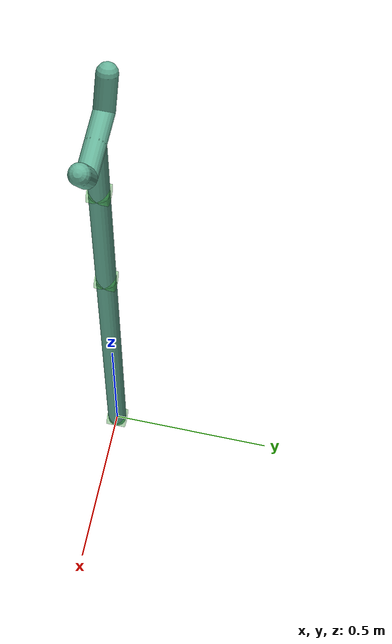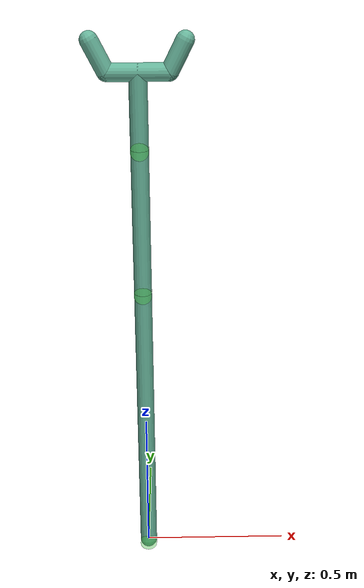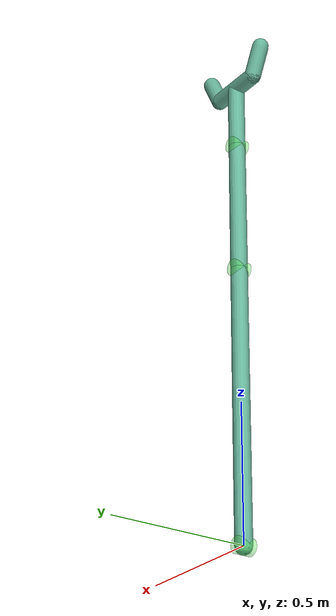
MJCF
<mujoco model="Chebychevs lambda mechanism">
  <option timestep="0.0001"/>
  <option gravity="0 0 0"/>

  <default>
    <geom type="capsule" size=".03" rgba=".4 .7 .6 1"/>
    <default class="visual_cylinder">
      <geom type="cylinder" fromto="0 .03 0 0 -.03 0" size=".03" rgba=".3 .9 .3 .4"/>
    </default>
    <site rgba=".0 .7 0 1"/>
  </default>

  <worldbody>
    <light pos="0 0 10"/>
    <body name="l0" pos="0 0 0">
    <joint name="j1" type="hinge" axis="0 0 1"/>
    <geom name="D" class="visual_cylinder"/>
    <geom name="DB" fromto="0 0 0 0 0 1"/>
    <body name="BA" pos="0 0 1">
        <joint name="j2" type="hinge" axis="0 1 0"/>
        <geom name="B" class="visual_cylinder"/>
        <geom name="BA" fromto="0 0 0 0 0 0.5"/>
        <body name="AO" pos="0 0 0.5">
            <joint name="j3" type="hinge" axis="0 1 0"/>
            <geom name="A" class="visual_cylinder"/>
            <geom name="AO" fromto="0 0 0 0 0 0.25"/>
            <geom name="qw" fromto="-0.1 0 0.25 0.1 0 0.25"/>
            <geom name="qw2" fromto="-0.1 0 0.25 -0.15 0 0.35"/>
            <geom name="qw3" fromto="0.1 0 0.25 0.15 0 0.35"/>

        </body>
    </body>
    </body>
  </worldbody>

  <actuator>
    <position name="act1" joint="j1"/>
    <position name="act2" joint="j2"/>
    <position name="act3" joint="j3"/>
  </actuator>

</mujoco>
